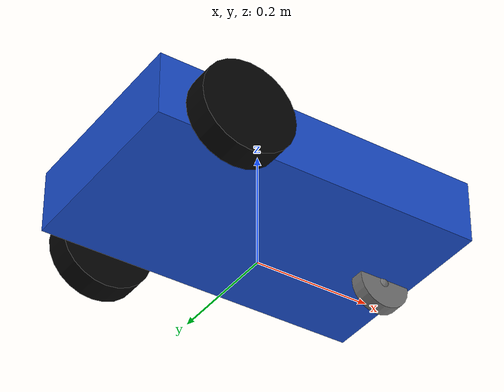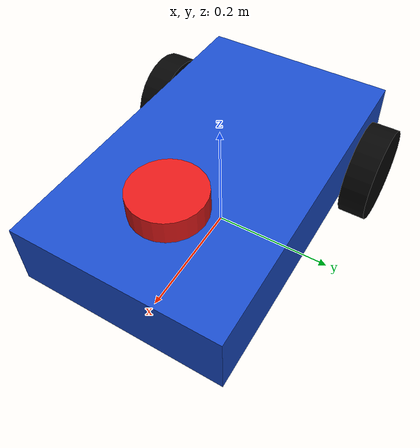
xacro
<?xml version="1.0"?>
<robot xmlns:xacro="http://www.ros.org/wiki/xacro" name="my_robot">

  <!-- Robot parameters -->

  <xacro:property name="base_length" value="0.56"/>
  <xacro:property name="base_width" value="0.34"/>
  <xacro:property name="base_height" value="0.11"/>

  <xacro:property name="wheel_radius" value="0.08"/>
  <xacro:property name="wheel_width" value="0.045"/>

  <xacro:property name="drive_wheel_x_offset" value="-0.16"/>
  <xacro:property name="wheel_y_offset" value="0.20"/>
  <xacro:property name="wheel_z_offset" value="-0.025"/>

  <xacro:property name="caster_x_offset" value="0.23"/>
  <xacro:property name="caster_radius" value="0.045"/>
  <xacro:property name="caster_width" value="0.025"/>
  <xacro:property name="caster_z_offset" value="-0.06"/>

  <xacro:property name="laser_radius" value="0.06"/>
  <xacro:property name="laser_height" value="0.04"/>

  <!-- Materials -->

  <material name="blue">
    <color rgba="0.1 0.3 0.8 1.0"/>
  </material>

  <material name="black">
    <color rgba="0.02 0.02 0.02 1.0"/>
  </material>

  <material name="gray">
    <color rgba="0.45 0.45 0.45 1.0"/>
  </material>

  <material name="red">
    <color rgba="0.9 0.1 0.1 1.0"/>
  </material>

  <!-- Base footprint -->

  <link name="base_footprint"/>

  <joint name="base_joint" type="fixed">
    <parent link="base_footprint"/>
    <child link="base_link"/>
    <origin xyz="0 0 0.105" rpy="0 0 0"/>
  </joint>

  <!-- Base link -->

  <link name="base_link">
    <visual>
      <geometry>
        <box size="${base_length} ${base_width} ${base_height}"/>
      </geometry>
      <material name="blue"/>
    </visual>

    <collision>
      <geometry>
        <box size="${base_length} ${base_width} ${base_height}"/>
      </geometry>
    </collision>

    <inertial>
      <mass value="8.0"/>
      <inertia
        ixx="0.085" ixy="0.0" ixz="0.0"
        iyy="0.217" iyz="0.0"
        izz="0.286"/>
    </inertial>
  </link>

  <!-- Wheel macro -->

  <xacro:macro name="wheel" params="name x y">
    <joint name="${name}_joint" type="continuous">
      <parent link="base_link"/>
      <child link="${name}_link"/>
      <origin xyz="${x} ${y} ${wheel_z_offset}" rpy="${-pi/2} 0 0"/>
      <axis xyz="0 0 1"/>
    </joint>

    <link name="${name}_link">
      <visual>
        <geometry>
          <cylinder radius="${wheel_radius}" length="${wheel_width}"/>
        </geometry>
        <material name="black"/>
      </visual>

      <collision>
        <geometry>
          <cylinder radius="${wheel_radius}" length="${wheel_width}"/>
        </geometry>
      </collision>

      <inertial>
        <mass value="0.8"/>
        <inertia
          ixx="0.002" ixy="0.0" ixz="0.0"
          iyy="0.002" iyz="0.0"
          izz="0.002"/>
      </inertial>
    </link>
  </xacro:macro>

  <!-- Two differential-drive wheels -->

  <xacro:wheel name="left_wheel"  x="${drive_wheel_x_offset}" y="${wheel_y_offset}"/>
  <xacro:wheel name="right_wheel" x="${drive_wheel_x_offset}" y="${-wheel_y_offset}"/>

  <!-- Passive caster support -->

  <joint name="caster_swivel_joint" type="continuous">
    <parent link="base_link"/>
    <child link="caster_swivel_link"/>
    <origin xyz="${caster_x_offset} 0 ${caster_z_offset}" rpy="0 0 0"/>
    <axis xyz="0 0 1"/>
  </joint>

  <link name="caster_swivel_link">
    <visual>
      <geometry>
        <sphere radius="0.015"/>
      </geometry>
      <material name="gray"/>
    </visual>

    <inertial>
      <mass value="0.05"/>
      <inertia
        ixx="0.00002" ixy="0.0" ixz="0.0"
        iyy="0.00002" iyz="0.0"
        izz="0.00002"/>
    </inertial>
  </link>

  <joint name="caster_wheel_joint" type="continuous">
    <parent link="caster_swivel_link"/>
    <child link="caster_wheel_link"/>
    <origin xyz="0 0 0" rpy="${pi/2} 0 0"/>
    <axis xyz="0 0 1"/>
  </joint>

  <link name="caster_wheel_link">
    <visual>
      <geometry>
        <cylinder radius="${caster_radius}" length="${caster_width}"/>
      </geometry>
      <material name="gray"/>
    </visual>

    <collision>
      <geometry>
        <cylinder radius="${caster_radius}" length="${caster_width}"/>
      </geometry>
    </collision>

    <inertial>
      <mass value="0.15"/>
      <inertia
        ixx="0.0001" ixy="0.0" ixz="0.0"
        iyy="0.0001" iyz="0.0"
        izz="0.0001"/>
    </inertial>
  </link>

  <!-- Laser lidar -->

  <joint name="laser_joint" type="fixed">
    <parent link="base_link"/>
    <child link="laser_link"/>
    <origin xyz="0.14 0 0.08" rpy="0 0 0"/>
  </joint>

  <link name="laser_link">
    <visual>
      <geometry>
        <cylinder radius="${laser_radius}" length="${laser_height}"/>
      </geometry>
      <material name="red"/>
    </visual>

    <collision>
      <geometry>
        <cylinder radius="${laser_radius}" length="${laser_height}"/>
      </geometry>
    </collision>

    <inertial>
      <mass value="0.2"/>
      <inertia
        ixx="0.0005" ixy="0.0" ixz="0.0"
        iyy="0.0005" iyz="0.0"
        izz="0.0005"/>
    </inertial>
  </link>

</robot>
